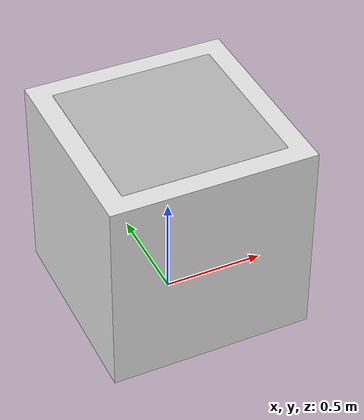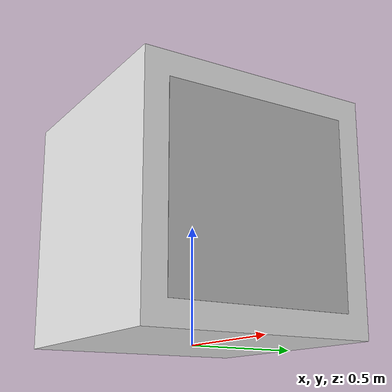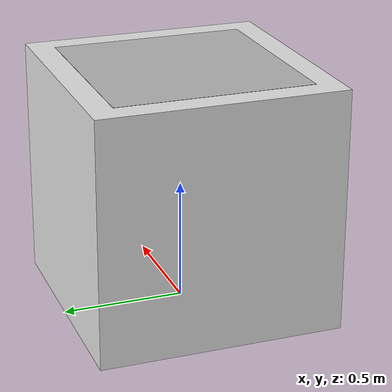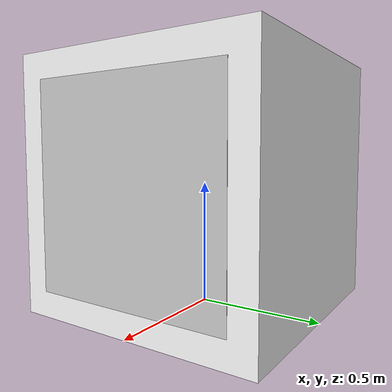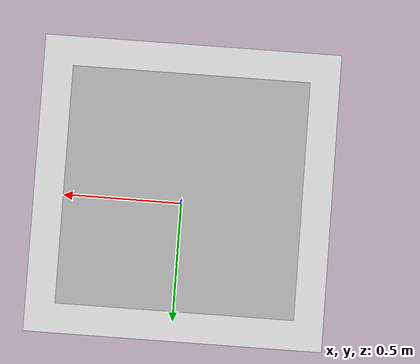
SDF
<?xml version="1.0"?>
<sdf version="1.6">
  <model name="aruco_box">
    <pose>0 0 0.5 0 0 0</pose>
    <static>false</static>

    <link name="box_link">
      <pose>0 0 0 0 0 0</pose>

      <!-- Inertial properties -->
      <inertial>
        <mass>1.0</mass>
        <inertia>
          <ixx>0.1667</ixx>
          <ixy>0</ixy>
          <ixz>0</ixz>
          <iyy>0.1667</iyy>
          <iyz>0</iyz>
          <izz>0.1667</izz>
        </inertia>
      </inertial>

      <!-- Collision -->
      <collision name="box_collision">
        <geometry>
          <box>
            <size>1.0 1.0 1.0</size>
          </box>
        </geometry>
      </collision>

      <!-- Main box visual (white/gray base) -->
      <visual name="box_visual">
        <geometry>
          <box>
            <size>1.0 1.0 1.0</size>
          </box>
        </geometry>
        <material>
          <ambient>0.9 0.9 0.9 1.0</ambient>
          <diffuse>0.9 0.9 0.9 1.0</diffuse>
          <specular>0.1 0.1 0.1 1.0</specular>
        </material>
      </visual>

      <!-- ArUco marker on top face -->
      <visual name="aruco_top">
        <pose>0 0 0.501 0 0 0</pose>
        <geometry>
          <box>
            <size>0.8 0.8 0.001</size>
          </box>
        </geometry>
        <material>
          <script>
            <uri>model://aruco_box/materials/scripts</uri>
            <uri>model://aruco_box/materials/textures</uri>
            <name>Aruco0</name>
          </script>
        </material>
      </visual>

      <!-- ArUco marker on front face -->
      <visual name="aruco_front">
        <pose>0.501 0 0 0 1.5708 0</pose>
        <geometry>
          <box>
            <size>0.8 0.8 0.001</size>
          </box>
        </geometry>
        <material>
          <script>
            <uri>model://aruco_box/materials/scripts</uri>
            <uri>model://aruco_box/materials/textures</uri>
            <name>Aruco1</name>
          </script>
        </material>
      </visual>

    </link>
  </model>
</sdf>
